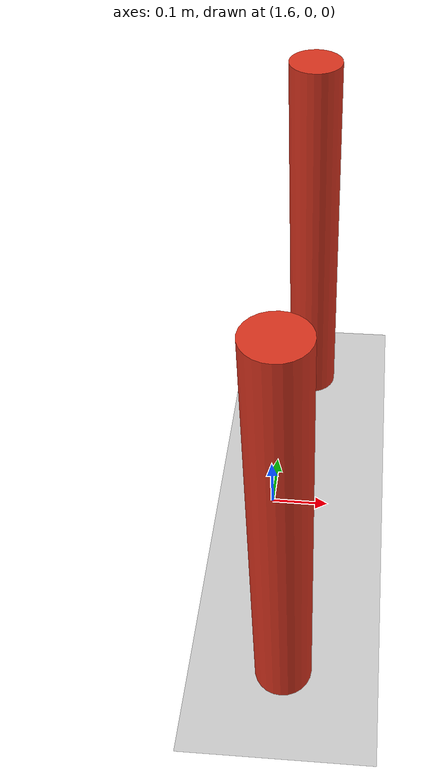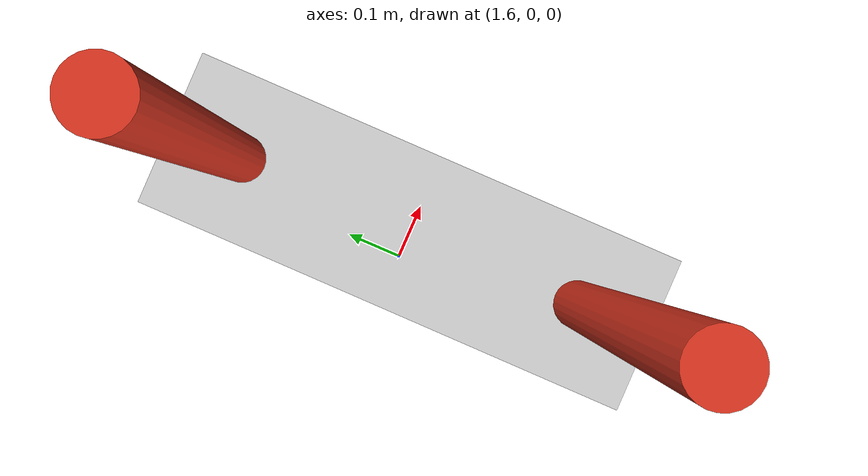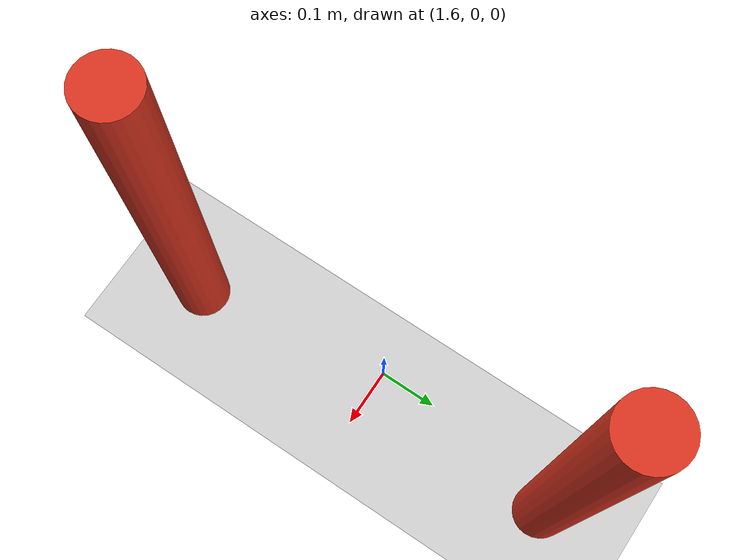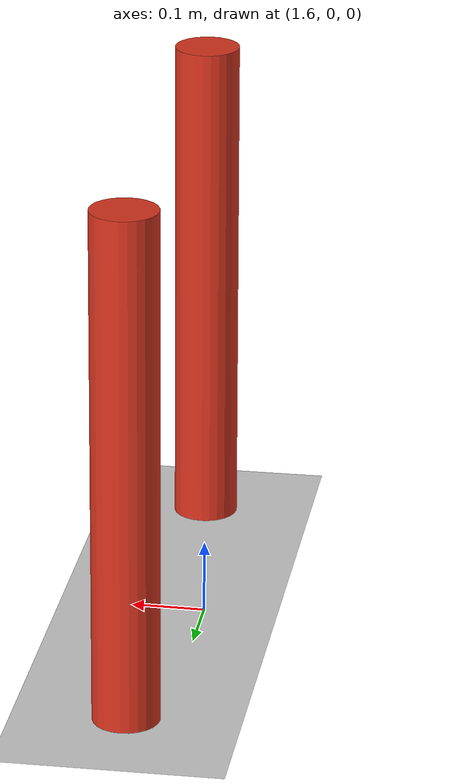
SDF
<?xml version="1.0"?>
<sdf version="1.9">
  <world name="follow_me_leg_like_pillars_corridor">
    <plugin filename="libignition-gazebo-physics-system.so"
            name="ignition::gazebo::systems::Physics"/>
    <plugin filename="libignition-gazebo-user-commands-system.so"
            name="ignition::gazebo::systems::UserCommands"/>
    <plugin filename="libignition-gazebo-scene-broadcaster-system.so"
            name="ignition::gazebo::systems::SceneBroadcaster"/>
    <plugin filename="libignition-gazebo-sensors-system.so"
            name="ignition::gazebo::systems::Sensors">
      <!-- FortressではLiDAR出力をGazebo Transportへ出し、ROS側へはros_gz_bridgeで接続する。 -->
      <render_engine>ogre2</render_engine>
    </plugin>

    <physics name="default_physics" type="ode">
      <max_step_size>0.001</max_step_size>
      <real_time_update_rate>1000</real_time_update_rate>
      <real_time_factor>1.0</real_time_factor>
    </physics>

    <scene>
      <ambient>0.45 0.45 0.45 1</ambient>
      <background>0.7 0.7 0.7 1</background>
      <shadows>true</shadows>
    </scene>

    <light type="directional" name="sun">
      <cast_shadows>true</cast_shadows>
      <pose>0 0 10 0 0 0</pose>
      <diffuse>0.8 0.8 0.8 1</diffuse>
      <specular>0.2 0.2 0.2 1</specular>
      <attenuation>
        <range>1000</range>
        <constant>0.9</constant>
        <linear>0.01</linear>
        <quadratic>0.001</quadratic>
      </attenuation>
      <direction>-0.5 0.1 -0.9</direction>
    </light>

    <model name="ground_plane">
      <static>true</static>
      <link name="link">
        <collision name="collision">
          <geometry>
            <plane>
              <normal>0 0 1</normal>
              <size>100 100</size>
            </plane>
          </geometry>
        </collision>
        <visual name="visual">
          <geometry>
            <plane>
              <normal>0 0 1</normal>
              <size>100 100</size>
            </plane>
          </geometry>
          <material>
            <ambient>0.8 0.8 0.8 1</ambient>
            <diffuse>0.8 0.8 0.8 1</diffuse>
          </material>
        </visual>
      </link>
    </model>

    <model name="leg_like_pillar_left">
      <static>true</static>
      <!-- 初期取得を邪魔しないよう x=1.65 に置き、追従開始後に人物が通過する条件を作る。 -->
      <pose>1.65 0.34 0.35 0 0 0</pose>
      <link name="link">
        <collision name="collision">
          <geometry>
            <cylinder>
              <radius>0.045</radius>
              <length>0.70</length>
            </cylinder>
          </geometry>
        </collision>
        <visual name="visual">
          <!-- 536870913 = GUI表示bit(1) + LiDAR専用bit(0x20000000)。柱はGUIにも/scanにも出す。 -->
          <visibility_flags>536870913</visibility_flags>
          <geometry>
            <cylinder>
              <radius>0.045</radius>
              <length>0.70</length>
            </cylinder>
          </geometry>
          <material>
            <ambient>0.85 0.20 0.12 1</ambient>
            <diffuse>0.85 0.20 0.12 1</diffuse>
          </material>
        </visual>
      </link>
    </model>

    <model name="leg_like_pillar_right">
      <static>true</static>
      <pose>1.65 -0.34 0.35 0 0 0</pose>
      <link name="link">
        <collision name="collision">
          <geometry>
            <cylinder>
              <radius>0.045</radius>
              <length>0.70</length>
            </cylinder>
          </geometry>
        </collision>
        <visual name="visual">
          <visibility_flags>536870913</visibility_flags>
          <geometry>
            <cylinder>
              <radius>0.045</radius>
              <length>0.70</length>
            </cylinder>
          </geometry>
          <material>
            <ambient>0.85 0.20 0.12 1</ambient>
            <diffuse>0.85 0.20 0.12 1</diffuse>
          </material>
        </visual>
      </link>
    </model>
  </world>
</sdf>
